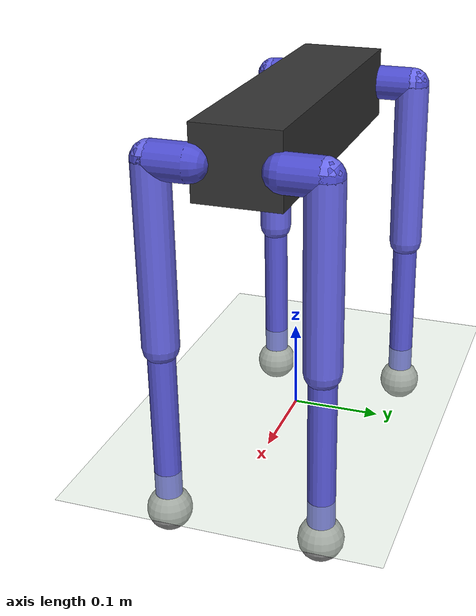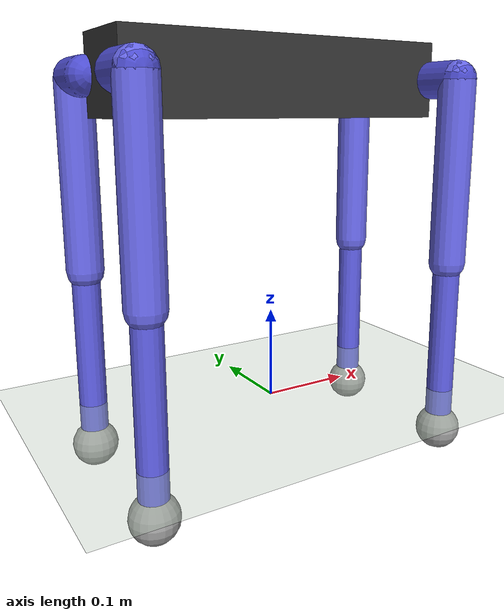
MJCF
<mujoco model="unitree_go2_quadruped">

  <compiler angle="degree" coordinate="local" inertiafromgeom="true"/>
  <option integrator="RK4" timestep="0.002" gravity="0 0 -9.81"/>

  <default>
    <joint armature="0.01" damping="0.5" limited="true"/>
    <geom conaffinity="0" condim="3" density="1000" friction="1.0 0.5 0.5"
          margin="0.01" rgba="0.15 0.15 0.15 1"/>
    <motor ctrllimited="true" ctrlrange="-1.0 1.0"/>
  </default>

  <asset>
    <texture builtin="gradient" height="100" rgb1="0.6 0.8 1.0" rgb2="0.1 0.1 0.3"
             type="skybox" width="100"/>
    <texture builtin="checker" height="100" name="texplane"
             rgb1="0.2 0.3 0.4" rgb2="0.8 0.85 0.9" type="2d" width="100"/>
    <material name="MatPlane" reflectance="0.5" shininess="1"
              specular="1" texrepeat="60 60" texture="texplane"/>
  </asset>

  <worldbody>
    <light cutoff="100" diffuse="1 1 1" dir="0 0 -1.3"
           directional="true" pos="0 0 1.3" specular=".1 .1 .1"/>
    <geom conaffinity="1" condim="3" material="MatPlane" name="floor"
          pos="0 0 0" size="40 40 40" type="plane" rgba="0.8 0.9 0.8 1"/>

    <!-- Ana Govde / Main Torso                       -->
    <!-- Go2 boyutlari: ~0.36 x 0.094 x 0.08 m       -->
    <body name="torso" pos="0 0 0.35">
      <camera name="track" mode="trackcom" pos="0 -3 0.5" xyaxes="1 0 0 0 0 1"/>
      <joint name="root" type="free" armature="0" damping="0" limited="false"/>

      <geom name="torso_geom" type="box" size="0.18 0.047 0.04"
            pos="0 0 0" rgba="0.2 0.2 0.2 1" mass="5.0"/>

      <!-- IMU site on torso -->
      <site name="torso_imu" pos="0 0 0" size="0.01"/>

      <!-- ON SOL BACAK / FRONT LEFT LEG (FL)           -->
      <body name="fl_abd_link" pos="0.18 0.047 0">
        <!-- Hip Abduction: yana acilma / lateral swing -->
        <joint name="fl_abd_joint" type="hinge" axis="1 0 0"
               range="-25 25" pos="0 0 0"/>
        <geom name="fl_abd_geom" type="capsule"
              fromto="0 0 0 0 0.04 0" size="0.02"
              rgba="0.3 0.3 0.8 1"/>

        <body name="fl_hip_link" pos="0 0.04 0">
          <!-- Hip Flexion: on-arka sallanma / forward-backward swing -->
          <joint name="fl_hip_joint" type="hinge" axis="0 1 0"
                 range="-60 60" pos="0 0 0"/>
          <geom name="fl_upper_leg" type="capsule"
                fromto="0 0 0 0 0 -0.2" size="0.02"
                rgba="0.4 0.4 0.9 1"/>

          <body name="fl_knee_link" pos="0 0 -0.2">
            <!-- Knee: diz bukulme / knee flexion -->
            <joint name="fl_knee_joint" type="hinge" axis="0 1 0"
                   range="-145 -45" pos="0 0 0"/>
            <geom name="fl_lower_leg" type="capsule"
                  fromto="0 0 0 0 0 -0.2" size="0.015"
                  rgba="0.35 0.35 0.85 1"/>

            <!-- Foot contact -->
            <geom name="fl_foot" type="sphere" pos="0 0 -0.2" size="0.025"
                  rgba="0.6 0.6 0.6 1" conaffinity="1"/>
            <site name="fl_foot_site" pos="0 0 -0.2" size="0.025"/>
          </body>
        </body>
      </body>

      <!-- ON SAG BACAK / FRONT RIGHT LEG (FR)          -->
      <body name="fr_abd_link" pos="0.18 -0.047 0">
        <joint name="fr_abd_joint" type="hinge" axis="1 0 0"
               range="-25 25" pos="0 0 0"/>
        <geom name="fr_abd_geom" type="capsule"
              fromto="0 0 0 0 -0.04 0" size="0.02"
              rgba="0.3 0.3 0.8 1"/>

        <body name="fr_hip_link" pos="0 -0.04 0">
          <joint name="fr_hip_joint" type="hinge" axis="0 1 0"
                 range="-60 60" pos="0 0 0"/>
          <geom name="fr_upper_leg" type="capsule"
                fromto="0 0 0 0 0 -0.2" size="0.02"
                rgba="0.4 0.4 0.9 1"/>

          <body name="fr_knee_link" pos="0 0 -0.2">
            <joint name="fr_knee_joint" type="hinge" axis="0 1 0"
                   range="-145 -45" pos="0 0 0"/>
            <geom name="fr_lower_leg" type="capsule"
                  fromto="0 0 0 0 0 -0.2" size="0.015"
                  rgba="0.35 0.35 0.85 1"/>

            <geom name="fr_foot" type="sphere" pos="0 0 -0.2" size="0.025"
                  rgba="0.6 0.6 0.6 1" conaffinity="1"/>
            <site name="fr_foot_site" pos="0 0 -0.2" size="0.025"/>
          </body>
        </body>
      </body>

      <!-- ARKA SOL BACAK / BACK LEFT LEG (BL)          -->
      <body name="bl_abd_link" pos="-0.18 0.047 0">
        <joint name="bl_abd_joint" type="hinge" axis="1 0 0"
               range="-25 25" pos="0 0 0"/>
        <geom name="bl_abd_geom" type="capsule"
              fromto="0 0 0 0 0.04 0" size="0.02"
              rgba="0.3 0.3 0.8 1"/>

        <body name="bl_hip_link" pos="0 0.04 0">
          <joint name="bl_hip_joint" type="hinge" axis="0 1 0"
                 range="-60 60" pos="0 0 0"/>
          <geom name="bl_upper_leg" type="capsule"
                fromto="0 0 0 0 0 -0.2" size="0.02"
                rgba="0.4 0.4 0.9 1"/>

          <body name="bl_knee_link" pos="0 0 -0.2">
            <joint name="bl_knee_joint" type="hinge" axis="0 1 0"
                   range="-145 -45" pos="0 0 0"/>
            <geom name="bl_lower_leg" type="capsule"
                  fromto="0 0 0 0 0 -0.2" size="0.015"
                  rgba="0.35 0.35 0.85 1"/>

            <geom name="bl_foot" type="sphere" pos="0 0 -0.2" size="0.025"
                  rgba="0.6 0.6 0.6 1" conaffinity="1"/>
            <site name="bl_foot_site" pos="0 0 -0.2" size="0.025"/>
          </body>
        </body>
      </body>

      <!-- ARKA SAG BACAK / BACK RIGHT LEG (BR)         -->
      <body name="br_abd_link" pos="-0.18 -0.047 0">
        <joint name="br_abd_joint" type="hinge" axis="1 0 0"
               range="-25 25" pos="0 0 0"/>
        <geom name="br_abd_geom" type="capsule"
              fromto="0 0 0 0 -0.04 0" size="0.02"
              rgba="0.3 0.3 0.8 1"/>

        <body name="br_hip_link" pos="0 -0.04 0">
          <joint name="br_hip_joint" type="hinge" axis="0 1 0"
                 range="-60 60" pos="0 0 0"/>
          <geom name="br_upper_leg" type="capsule"
                fromto="0 0 0 0 0 -0.2" size="0.02"
                rgba="0.4 0.4 0.9 1"/>

          <body name="br_knee_link" pos="0 0 -0.2">
            <joint name="br_knee_joint" type="hinge" axis="0 1 0"
                   range="-145 -45" pos="0 0 0"/>
            <geom name="br_lower_leg" type="capsule"
                  fromto="0 0 0 0 0 -0.2" size="0.015"
                  rgba="0.35 0.35 0.85 1"/>

            <geom name="br_foot" type="sphere" pos="0 0 -0.2" size="0.025"
                  rgba="0.6 0.6 0.6 1" conaffinity="1"/>
            <site name="br_foot_site" pos="0 0 -0.2" size="0.025"/>
          </body>
        </body>
      </body>
    </body>
  </worldbody>

  <!-- Motorlar / Actuators                         -->
  <!-- 12 motor: her bacakta 3 (abd, hip, knee)     -->
  <actuator>
    <!-- Front Left -->
    <motor name="fl_abd_motor"  joint="fl_abd_joint"  gear="25"/>
    <motor name="fl_hip_motor"  joint="fl_hip_joint"  gear="25"/>
    <motor name="fl_knee_motor" joint="fl_knee_joint" gear="35"/>
    <!-- Front Right -->
    <motor name="fr_abd_motor"  joint="fr_abd_joint"  gear="25"/>
    <motor name="fr_hip_motor"  joint="fr_hip_joint"  gear="25"/>
    <motor name="fr_knee_motor" joint="fr_knee_joint" gear="35"/>
    <!-- Back Left -->
    <motor name="bl_abd_motor"  joint="bl_abd_joint"  gear="25"/>
    <motor name="bl_hip_motor"  joint="bl_hip_joint"  gear="25"/>
    <motor name="bl_knee_motor" joint="bl_knee_joint" gear="35"/>
    <!-- Back Right -->
    <motor name="br_abd_motor"  joint="br_abd_joint"  gear="25"/>
    <motor name="br_hip_motor"  joint="br_hip_joint"  gear="25"/>
    <motor name="br_knee_motor" joint="br_knee_joint" gear="35"/>
  </actuator>

  <!-- Sensorler / Sensors                          -->
  <sensor>
    <!-- Foot contact touch sensors -->
    <touch name="fl_foot_touch" site="fl_foot_site"/>
    <touch name="fr_foot_touch" site="fr_foot_site"/>
    <touch name="bl_foot_touch" site="bl_foot_site"/>
    <touch name="br_foot_touch" site="br_foot_site"/>
    <!-- IMU -->
    <gyro name="torso_gyro" site="torso_imu"/>
    <accelerometer name="torso_accel" site="torso_imu"/>
  </sensor>
</mujoco>
